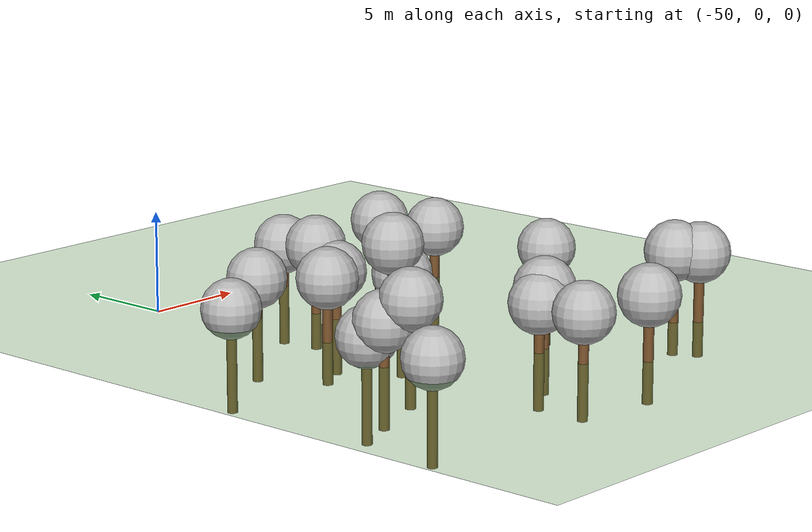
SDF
<sdf version="1.7">
 <world name="default">
  <model name="tree_simple434">
   <static>1</static>
   <link name="link">
    <pose>0 0 0.1 0 -0 0</pose>
    <collision name="collision_trunk">
     <pose>0 0 2 0 -0 0</pose>
     <geometry><cylinder><radius>0.25</radius><length>4</length></cylinder></geometry>
    </collision>
    <collision name="collision_treetop">
     <pose>0 0 5.2 0 -0 0</pose>
     <geometry><sphere><radius>1.5</radius></sphere></geometry>
    </collision>
    <visual name="trunk">
     <pose>0 0 2 0 -0 0</pose>
     <geometry><cylinder><radius>0.25</radius><length>4</length></cylinder></geometry>
     <material>
      <script>
       <uri>model://tree_simple/scripts</uri>
       <uri>model://tree_simple/materials/textures</uri>
       <name>TreeSimple/Trunk</name>
      </script>
     </material>
    </visual>
    <visual name="treetop">
     <pose>0 0 5.2 0 -0 0</pose>
     <geometry><sphere><radius>1.5</radius></sphere></geometry>
     <material>
      <script>
       <uri>model://tree_simple/scripts</uri>
       <uri>model://tree_simple/materials/textures</uri>
       <name>TreeSimple/Treetop</name>
      </script>
     </material>
    </visual>
   </link>
   <pose>-43.1297 -18.5304 -2.94582 0 -0 0</pose>
  </model>
  <model name="tree_simple403">
   <static>1</static>
   <link name="link">
    <pose>0 0 0.1 0 -0 0</pose>
    <collision name="collision_trunk">
     <pose>0 0 2 0 -0 0</pose>
     <geometry><cylinder><radius>0.25</radius><length>4</length></cylinder></geometry>
    </collision>
    <collision name="collision_treetop">
     <pose>0 0 5.2 0 -0 0</pose>
     <geometry><sphere><radius>1.5</radius></sphere></geometry>
    </collision>
    <visual name="trunk">
     <pose>0 0 2 0 -0 0</pose>
     <geometry><cylinder><radius>0.25</radius><length>4</length></cylinder></geometry>
     <material>
      <script>
       <uri>model://tree_simple/scripts</uri>
       <uri>model://tree_simple/materials/textures</uri>
       <name>TreeSimple/Trunk</name>
      </script>
     </material>
    </visual>
    <visual name="treetop">
     <pose>0 0 5.2 0 -0 0</pose>
     <geometry><sphere><radius>1.5</radius></sphere></geometry>
     <material>
      <script>
       <uri>model://tree_simple/scripts</uri>
       <uri>model://tree_simple/materials/textures</uri>
       <name>TreeSimple/Treetop</name>
      </script>
     </material>
    </visual>
   </link>
   <pose>-49.5317 -17.5557 -4.45522 0 -0 0</pose>
  </model>
  <model name="tree_simple396">
   <static>1</static>
   <link name="link">
    <pose>0 0 0.1 0 -0 0</pose>
    <collision name="collision_trunk">
     <pose>0 0 2 0 -0 0</pose>
     <geometry><cylinder><radius>0.25</radius><length>4</length></cylinder></geometry>
    </collision>
    <collision name="collision_treetop">
     <pose>0 0 5.2 0 -0 0</pose>
     <geometry><sphere><radius>1.5</radius></sphere></geometry>
    </collision>
    <visual name="trunk">
     <pose>0 0 2 0 -0 0</pose>
     <geometry><cylinder><radius>0.25</radius><length>4</length></cylinder></geometry>
     <material>
      <script>
       <uri>model://tree_simple/scripts</uri>
       <uri>model://tree_simple/materials/textures</uri>
       <name>TreeSimple/Trunk</name>
      </script>
     </material>
    </visual>
    <visual name="treetop">
     <pose>0 0 5.2 0 -0 0</pose>
     <geometry><sphere><radius>1.5</radius></sphere></geometry>
     <material>
      <script>
       <uri>model://tree_simple/scripts</uri>
       <uri>model://tree_simple/materials/textures</uri>
       <name>TreeSimple/Treetop</name>
      </script>
     </material>
    </visual>
   </link>
   <pose>-34.4955 -19.8378 -1.78107 0 -0 0</pose>
  </model>
  <model name="tree_simple375">
   <static>1</static>
   <link name="link">
    <pose>0 0 0.1 0 -0 0</pose>
    <collision name="collision_trunk">
     <pose>0 0 2 0 -0 0</pose>
     <geometry><cylinder><radius>0.25</radius><length>4</length></cylinder></geometry>
    </collision>
    <collision name="collision_treetop">
     <pose>0 0 5.2 0 -0 0</pose>
     <geometry><sphere><radius>1.5</radius></sphere></geometry>
    </collision>
    <visual name="trunk">
     <pose>0 0 2 0 -0 0</pose>
     <geometry><cylinder><radius>0.25</radius><length>4</length></cylinder></geometry>
     <material>
      <script>
       <uri>model://tree_simple/scripts</uri>
       <uri>model://tree_simple/materials/textures</uri>
       <name>TreeSimple/Trunk</name>
      </script>
     </material>
    </visual>
    <visual name="treetop">
     <pose>0 0 5.2 0 -0 0</pose>
     <geometry><sphere><radius>1.5</radius></sphere></geometry>
     <material>
      <script>
       <uri>model://tree_simple/scripts</uri>
       <uri>model://tree_simple/materials/textures</uri>
       <name>TreeSimple/Treetop</name>
      </script>
     </material>
    </visual>
   </link>
   <pose>-48.3845 -9.90797 -2.22465 0 -0 0</pose>
  </model>
  <model name="tree_simple373">
   <static>1</static>
   <link name="link">
    <pose>0 0 0.1 0 -0 0</pose>
    <collision name="collision_trunk">
     <pose>0 0 2 0 -0 0</pose>
     <geometry><cylinder><radius>0.25</radius><length>4</length></cylinder></geometry>
    </collision>
    <collision name="collision_treetop">
     <pose>0 0 5.2 0 -0 0</pose>
     <geometry><sphere><radius>1.5</radius></sphere></geometry>
    </collision>
    <visual name="trunk">
     <pose>0 0 2 0 -0 0</pose>
     <geometry><cylinder><radius>0.25</radius><length>4</length></cylinder></geometry>
     <material>
      <script>
       <uri>model://tree_simple/scripts</uri>
       <uri>model://tree_simple/materials/textures</uri>
       <name>TreeSimple/Trunk</name>
      </script>
     </material>
    </visual>
    <visual name="treetop">
     <pose>0 0 5.2 0 -0 0</pose>
     <geometry><sphere><radius>1.5</radius></sphere></geometry>
     <material>
      <script>
       <uri>model://tree_simple/scripts</uri>
       <uri>model://tree_simple/materials/textures</uri>
       <name>TreeSimple/Treetop</name>
      </script>
     </material>
    </visual>
   </link>
   <pose>-43.1843 -21.2191 -2.91857 0 -0 0</pose>
  </model>
  <model name="tree_simple369">
   <static>1</static>
   <link name="link">
    <pose>0 0 0.1 0 -0 0</pose>
    <collision name="collision_trunk">
     <pose>0 0 2 0 -0 0</pose>
     <geometry><cylinder><radius>0.25</radius><length>4</length></cylinder></geometry>
    </collision>
    <collision name="collision_treetop">
     <pose>0 0 5.2 0 -0 0</pose>
     <geometry><sphere><radius>1.5</radius></sphere></geometry>
    </collision>
    <visual name="trunk">
     <pose>0 0 2 0 -0 0</pose>
     <geometry><cylinder><radius>0.25</radius><length>4</length></cylinder></geometry>
     <material>
      <script>
       <uri>model://tree_simple/scripts</uri>
       <uri>model://tree_simple/materials/textures</uri>
       <name>TreeSimple/Trunk</name>
      </script>
     </material>
    </visual>
    <visual name="treetop">
     <pose>0 0 5.2 0 -0 0</pose>
     <geometry><sphere><radius>1.5</radius></sphere></geometry>
     <material>
      <script>
       <uri>model://tree_simple/scripts</uri>
       <uri>model://tree_simple/materials/textures</uri>
       <name>TreeSimple/Treetop</name>
      </script>
     </material>
    </visual>
   </link>
   <pose>-40.8904 -23.2176 -2.18295 0 -0 0</pose>
  </model>
  <model name="tree_simple341">
   <static>1</static>
   <link name="link">
    <pose>0 0 0.1 0 -0 0</pose>
    <collision name="collision_trunk">
     <pose>0 0 2 0 -0 0</pose>
     <geometry><cylinder><radius>0.25</radius><length>4</length></cylinder></geometry>
    </collision>
    <collision name="collision_treetop">
     <pose>0 0 5.2 0 -0 0</pose>
     <geometry><sphere><radius>1.5</radius></sphere></geometry>
    </collision>
    <visual name="trunk">
     <pose>0 0 2 0 -0 0</pose>
     <geometry><cylinder><radius>0.25</radius><length>4</length></cylinder></geometry>
     <material>
      <script>
       <uri>model://tree_simple/scripts</uri>
       <uri>model://tree_simple/materials/textures</uri>
       <name>TreeSimple/Trunk</name>
      </script>
     </material>
    </visual>
    <visual name="treetop">
     <pose>0 0 5.2 0 -0 0</pose>
     <geometry><sphere><radius>1.5</radius></sphere></geometry>
     <material>
      <script>
       <uri>model://tree_simple/scripts</uri>
       <uri>model://tree_simple/materials/textures</uri>
       <name>TreeSimple/Treetop</name>
      </script>
     </material>
    </visual>
   </link>
   <pose>-49.5074 -4.58498 -4.4339 0 -0 0</pose>
  </model>
  <model name="tree_simple326">
   <static>1</static>
   <link name="link">
    <pose>0 0 0.1 0 -0 0</pose>
    <collision name="collision_trunk">
     <pose>0 0 2 0 -0 0</pose>
     <geometry><cylinder><radius>0.25</radius><length>4</length></cylinder></geometry>
    </collision>
    <collision name="collision_treetop">
     <pose>0 0 5.2 0 -0 0</pose>
     <geometry><sphere><radius>1.5</radius></sphere></geometry>
    </collision>
    <visual name="trunk">
     <pose>0 0 2 0 -0 0</pose>
     <geometry><cylinder><radius>0.25</radius><length>4</length></cylinder></geometry>
     <material>
      <script>
       <uri>model://tree_simple/scripts</uri>
       <uri>model://tree_simple/materials/textures</uri>
       <name>TreeSimple/Trunk</name>
      </script>
     </material>
    </visual>
    <visual name="treetop">
     <pose>0 0 5.2 0 -0 0</pose>
     <geometry><sphere><radius>1.5</radius></sphere></geometry>
     <material>
      <script>
       <uri>model://tree_simple/scripts</uri>
       <uri>model://tree_simple/materials/textures</uri>
       <name>TreeSimple/Treetop</name>
      </script>
     </material>
    </visual>
   </link>
   <pose>-44.852 -5.8044 -1.94404 0 -0 0</pose>
  </model>
  <model name="tree_simple323">
   <static>1</static>
   <link name="link">
    <pose>0 0 0.1 0 -0 0</pose>
    <collision name="collision_trunk">
     <pose>0 0 2 0 -0 0</pose>
     <geometry><cylinder><radius>0.25</radius><length>4</length></cylinder></geometry>
    </collision>
    <collision name="collision_treetop">
     <pose>0 0 5.2 0 -0 0</pose>
     <geometry><sphere><radius>1.5</radius></sphere></geometry>
    </collision>
    <visual name="trunk">
     <pose>0 0 2 0 -0 0</pose>
     <geometry><cylinder><radius>0.25</radius><length>4</length></cylinder></geometry>
     <material>
      <script>
       <uri>model://tree_simple/scripts</uri>
       <uri>model://tree_simple/materials/textures</uri>
       <name>TreeSimple/Trunk</name>
      </script>
     </material>
    </visual>
    <visual name="treetop">
     <pose>0 0 5.2 0 -0 0</pose>
     <geometry><sphere><radius>1.5</radius></sphere></geometry>
     <material>
      <script>
       <uri>model://tree_simple/scripts</uri>
       <uri>model://tree_simple/materials/textures</uri>
       <name>TreeSimple/Treetop</name>
      </script>
     </material>
    </visual>
   </link>
   <pose>-44.9542 -10.9648 -0.99132 0 -0 0</pose>
  </model>
  <model name="tree_simple318">
   <static>1</static>
   <link name="link">
    <pose>0 0 0.1 0 -0 0</pose>
    <collision name="collision_trunk">
     <pose>0 0 2 0 -0 0</pose>
     <geometry><cylinder><radius>0.25</radius><length>4</length></cylinder></geometry>
    </collision>
    <collision name="collision_treetop">
     <pose>0 0 5.2 0 -0 0</pose>
     <geometry><sphere><radius>1.5</radius></sphere></geometry>
    </collision>
    <visual name="trunk">
     <pose>0 0 2 0 -0 0</pose>
     <geometry><cylinder><radius>0.25</radius><length>4</length></cylinder></geometry>
     <material>
      <script>
       <uri>model://tree_simple/scripts</uri>
       <uri>model://tree_simple/materials/textures</uri>
       <name>TreeSimple/Trunk</name>
      </script>
     </material>
    </visual>
    <visual name="treetop">
     <pose>0 0 5.2 0 -0 0</pose>
     <geometry><sphere><radius>1.5</radius></sphere></geometry>
     <material>
      <script>
       <uri>model://tree_simple/scripts</uri>
       <uri>model://tree_simple/materials/textures</uri>
       <name>TreeSimple/Treetop</name>
      </script>
     </material>
    </visual>
   </link>
   <pose>-35.5307 -5.31131 -2.69898 0 -0 0</pose>
  </model>
  <model name="tree_simple259">
   <static>1</static>
   <link name="link">
    <pose>0 0 0.1 0 -0 0</pose>
    <collision name="collision_trunk">
     <pose>0 0 2 0 -0 0</pose>
     <geometry><cylinder><radius>0.25</radius><length>4</length></cylinder></geometry>
    </collision>
    <collision name="collision_treetop">
     <pose>0 0 5.2 0 -0 0</pose>
     <geometry><sphere><radius>1.5</radius></sphere></geometry>
    </collision>
    <visual name="trunk">
     <pose>0 0 2 0 -0 0</pose>
     <geometry><cylinder><radius>0.25</radius><length>4</length></cylinder></geometry>
     <material>
      <script>
       <uri>model://tree_simple/scripts</uri>
       <uri>model://tree_simple/materials/textures</uri>
       <name>TreeSimple/Trunk</name>
      </script>
     </material>
    </visual>
    <visual name="treetop">
     <pose>0 0 5.2 0 -0 0</pose>
     <geometry><sphere><radius>1.5</radius></sphere></geometry>
     <material>
      <script>
       <uri>model://tree_simple/scripts</uri>
       <uri>model://tree_simple/materials/textures</uri>
       <name>TreeSimple/Treetop</name>
      </script>
     </material>
    </visual>
   </link>
   <pose>-49.2282 -15.9494 -2.03117 0 -0 0</pose>
  </model>
  <model name="tree_simple240">
   <static>1</static>
   <link name="link">
    <pose>0 0 0.1 0 -0 0</pose>
    <collision name="collision_trunk">
     <pose>0 0 2 0 -0 0</pose>
     <geometry><cylinder><radius>0.25</radius><length>4</length></cylinder></geometry>
    </collision>
    <collision name="collision_treetop">
     <pose>0 0 5.2 0 -0 0</pose>
     <geometry><sphere><radius>1.5</radius></sphere></geometry>
    </collision>
    <visual name="trunk">
     <pose>0 0 2 0 -0 0</pose>
     <geometry><cylinder><radius>0.25</radius><length>4</length></cylinder></geometry>
     <material>
      <script>
       <uri>model://tree_simple/scripts</uri>
       <uri>model://tree_simple/materials/textures</uri>
       <name>TreeSimple/Trunk</name>
      </script>
     </material>
    </visual>
    <visual name="treetop">
     <pose>0 0 5.2 0 -0 0</pose>
     <geometry><sphere><radius>1.5</radius></sphere></geometry>
     <material>
      <script>
       <uri>model://tree_simple/scripts</uri>
       <uri>model://tree_simple/materials/textures</uri>
       <name>TreeSimple/Treetop</name>
      </script>
     </material>
    </visual>
   </link>
   <pose>-49.7674 -14.7908 -3.16157 0 -0 0</pose>
  </model>
  <model name="tree_simple239">
   <static>1</static>
   <link name="link">
    <pose>0 0 0.1 0 -0 0</pose>
    <collision name="collision_trunk">
     <pose>0 0 2 0 -0 0</pose>
     <geometry><cylinder><radius>0.25</radius><length>4</length></cylinder></geometry>
    </collision>
    <collision name="collision_treetop">
     <pose>0 0 5.2 0 -0 0</pose>
     <geometry><sphere><radius>1.5</radius></sphere></geometry>
    </collision>
    <visual name="trunk">
     <pose>0 0 2 0 -0 0</pose>
     <geometry><cylinder><radius>0.25</radius><length>4</length></cylinder></geometry>
     <material>
      <script>
       <uri>model://tree_simple/scripts</uri>
       <uri>model://tree_simple/materials/textures</uri>
       <name>TreeSimple/Trunk</name>
      </script>
     </material>
    </visual>
    <visual name="treetop">
     <pose>0 0 5.2 0 -0 0</pose>
     <geometry><sphere><radius>1.5</radius></sphere></geometry>
     <material>
      <script>
       <uri>model://tree_simple/scripts</uri>
       <uri>model://tree_simple/materials/textures</uri>
       <name>TreeSimple/Treetop</name>
      </script>
     </material>
    </visual>
   </link>
   <pose>-44.9804 -7.28495 -2.93881 0 -0 0</pose>
  </model>
  <model name="tree_simple221">
   <static>1</static>
   <link name="link">
    <pose>0 0 0.1 0 -0 0</pose>
    <collision name="collision_trunk">
     <pose>0 0 2 0 -0 0</pose>
     <geometry><cylinder><radius>0.25</radius><length>4</length></cylinder></geometry>
    </collision>
    <collision name="collision_treetop">
     <pose>0 0 5.2 0 -0 0</pose>
     <geometry><sphere><radius>1.5</radius></sphere></geometry>
    </collision>
    <visual name="trunk">
     <pose>0 0 2 0 -0 0</pose>
     <geometry><cylinder><radius>0.25</radius><length>4</length></cylinder></geometry>
     <material>
      <script>
       <uri>model://tree_simple/scripts</uri>
       <uri>model://tree_simple/materials/textures</uri>
       <name>TreeSimple/Trunk</name>
      </script>
     </material>
    </visual>
    <visual name="treetop">
     <pose>0 0 5.2 0 -0 0</pose>
     <geometry><sphere><radius>1.5</radius></sphere></geometry>
     <material>
      <script>
       <uri>model://tree_simple/scripts</uri>
       <uri>model://tree_simple/materials/textures</uri>
       <name>TreeSimple/Treetop</name>
      </script>
     </material>
    </visual>
   </link>
   <pose>-33.63 -20.7003 -1.88209 0 -0 0</pose>
  </model>
  <model name="tree_simple220">
   <static>1</static>
   <link name="link">
    <pose>0 0 0.1 0 -0 0</pose>
    <collision name="collision_trunk">
     <pose>0 0 2 0 -0 0</pose>
     <geometry><cylinder><radius>0.25</radius><length>4</length></cylinder></geometry>
    </collision>
    <collision name="collision_treetop">
     <pose>0 0 5.2 0 -0 0</pose>
     <geometry><sphere><radius>1.5</radius></sphere></geometry>
    </collision>
    <visual name="trunk">
     <pose>0 0 2 0 -0 0</pose>
     <geometry><cylinder><radius>0.25</radius><length>4</length></cylinder></geometry>
     <material>
      <script>
       <uri>model://tree_simple/scripts</uri>
       <uri>model://tree_simple/materials/textures</uri>
       <name>TreeSimple/Trunk</name>
      </script>
     </material>
    </visual>
    <visual name="treetop">
     <pose>0 0 5.2 0 -0 0</pose>
     <geometry><sphere><radius>1.5</radius></sphere></geometry>
     <material>
      <script>
       <uri>model://tree_simple/scripts</uri>
       <uri>model://tree_simple/materials/textures</uri>
       <name>TreeSimple/Treetop</name>
      </script>
     </material>
    </visual>
   </link>
   <pose>-36.5536 -2.4328 -2.61272 0 -0 0</pose>
  </model>
  <model name="tree_simple171">
   <static>1</static>
   <link name="link">
    <pose>0 0 0.1 0 -0 0</pose>
    <collision name="collision_trunk">
     <pose>0 0 2 0 -0 0</pose>
     <geometry><cylinder><radius>0.25</radius><length>4</length></cylinder></geometry>
    </collision>
    <collision name="collision_treetop">
     <pose>0 0 5.2 0 -0 0</pose>
     <geometry><sphere><radius>1.5</radius></sphere></geometry>
    </collision>
    <visual name="trunk">
     <pose>0 0 2 0 -0 0</pose>
     <geometry><cylinder><radius>0.25</radius><length>4</length></cylinder></geometry>
     <material>
      <script>
       <uri>model://tree_simple/scripts</uri>
       <uri>model://tree_simple/materials/textures</uri>
       <name>TreeSimple/Trunk</name>
      </script>
     </material>
    </visual>
    <visual name="treetop">
     <pose>0 0 5.2 0 -0 0</pose>
     <geometry><sphere><radius>1.5</radius></sphere></geometry>
     <material>
      <script>
       <uri>model://tree_simple/scripts</uri>
       <uri>model://tree_simple/materials/textures</uri>
       <name>TreeSimple/Treetop</name>
      </script>
     </material>
    </visual>
   </link>
   <pose>-47.4177 -4.27302 -3.34892 0 -0 0</pose>
  </model>
  <model name="tree_simple146">
   <static>1</static>
   <link name="link">
    <pose>0 0 0.1 0 -0 0</pose>
    <collision name="collision_trunk">
     <pose>0 0 2 0 -0 0</pose>
     <geometry><cylinder><radius>0.25</radius><length>4</length></cylinder></geometry>
    </collision>
    <collision name="collision_treetop">
     <pose>0 0 5.2 0 -0 0</pose>
     <geometry><sphere><radius>1.5</radius></sphere></geometry>
    </collision>
    <visual name="trunk">
     <pose>0 0 2 0 -0 0</pose>
     <geometry><cylinder><radius>0.25</radius><length>4</length></cylinder></geometry>
     <material>
      <script>
       <uri>model://tree_simple/scripts</uri>
       <uri>model://tree_simple/materials/textures</uri>
       <name>TreeSimple/Trunk</name>
      </script>
     </material>
    </visual>
    <visual name="treetop">
     <pose>0 0 5.2 0 -0 0</pose>
     <geometry><sphere><radius>1.5</radius></sphere></geometry>
     <material>
      <script>
       <uri>model://tree_simple/scripts</uri>
       <uri>model://tree_simple/materials/textures</uri>
       <name>TreeSimple/Treetop</name>
      </script>
     </material>
    </visual>
   </link>
   <pose>-42.8686 -9.6821 -3.07126 0 -0 0</pose>
  </model>
  <model name="tree_simple100">
   <static>1</static>
   <link name="link">
    <pose>0 0 0.1 0 -0 0</pose>
    <collision name="collision_trunk">
     <pose>0 0 2 0 -0 0</pose>
     <geometry><cylinder><radius>0.25</radius><length>4</length></cylinder></geometry>
    </collision>
    <collision name="collision_treetop">
     <pose>0 0 5.2 0 -0 0</pose>
     <geometry><sphere><radius>1.5</radius></sphere></geometry>
    </collision>
    <visual name="trunk">
     <pose>0 0 2 0 -0 0</pose>
     <geometry><cylinder><radius>0.25</radius><length>4</length></cylinder></geometry>
     <material>
      <script>
       <uri>model://tree_simple/scripts</uri>
       <uri>model://tree_simple/materials/textures</uri>
       <name>TreeSimple/Trunk</name>
      </script>
     </material>
    </visual>
    <visual name="treetop">
     <pose>0 0 5.2 0 -0 0</pose>
     <geometry><sphere><radius>1.5</radius></sphere></geometry>
     <material>
      <script>
       <uri>model://tree_simple/scripts</uri>
       <uri>model://tree_simple/materials/textures</uri>
       <name>TreeSimple/Treetop</name>
      </script>
     </material>
    </visual>
   </link>
   <pose>-42.0524 -0.870595 -3.14602 0 -0 0</pose>
  </model>
  <model name="tree_simple91">
   <static>1</static>
   <link name="link">
    <pose>0 0 0.1 0 -0 0</pose>
    <collision name="collision_trunk">
     <pose>0 0 2 0 -0 0</pose>
     <geometry><cylinder><radius>0.25</radius><length>4</length></cylinder></geometry>
    </collision>
    <collision name="collision_treetop">
     <pose>0 0 5.2 0 -0 0</pose>
     <geometry><sphere><radius>1.5</radius></sphere></geometry>
    </collision>
    <visual name="trunk">
     <pose>0 0 2 0 -0 0</pose>
     <geometry><cylinder><radius>0.25</radius><length>4</length></cylinder></geometry>
     <material>
      <script>
       <uri>model://tree_simple/scripts</uri>
       <uri>model://tree_simple/materials/textures</uri>
       <name>TreeSimple/Trunk</name>
      </script>
     </material>
    </visual>
    <visual name="treetop">
     <pose>0 0 5.2 0 -0 0</pose>
     <geometry><sphere><radius>1.5</radius></sphere></geometry>
     <material>
      <script>
       <uri>model://tree_simple/scripts</uri>
       <uri>model://tree_simple/materials/textures</uri>
       <name>TreeSimple/Treetop</name>
      </script>
     </material>
    </visual>
   </link>
   <pose>-49.8341 -13.7707 -4.07475 0 -0 0</pose>
  </model>
  <model name="tree_simple75">
   <static>1</static>
   <link name="link">
    <pose>0 0 0.1 0 -0 0</pose>
    <collision name="collision_trunk">
     <pose>0 0 2 0 -0 0</pose>
     <geometry><cylinder><radius>0.25</radius><length>4</length></cylinder></geometry>
    </collision>
    <collision name="collision_treetop">
     <pose>0 0 5.2 0 -0 0</pose>
     <geometry><sphere><radius>1.5</radius></sphere></geometry>
    </collision>
    <visual name="trunk">
     <pose>0 0 2 0 -0 0</pose>
     <geometry><cylinder><radius>0.25</radius><length>4</length></cylinder></geometry>
     <material>
      <script>
       <uri>model://tree_simple/scripts</uri>
       <uri>model://tree_simple/materials/textures</uri>
       <name>TreeSimple/Trunk</name>
      </script>
     </material>
    </visual>
    <visual name="treetop">
     <pose>0 0 5.2 0 -0 0</pose>
     <geometry><sphere><radius>1.5</radius></sphere></geometry>
     <material>
      <script>
       <uri>model://tree_simple/scripts</uri>
       <uri>model://tree_simple/materials/textures</uri>
       <name>TreeSimple/Treetop</name>
      </script>
     </material>
    </visual>
   </link>
   <pose>-42.3546 -18.1932 -2.40181 0 -0 0</pose>
  </model>
  <model name="tree_simple62">
   <static>1</static>
   <link name="link">
    <pose>0 0 0.1 0 -0 0</pose>
    <collision name="collision_trunk">
     <pose>0 0 2 0 -0 0</pose>
     <geometry><cylinder><radius>0.25</radius><length>4</length></cylinder></geometry>
    </collision>
    <collision name="collision_treetop">
     <pose>0 0 5.2 0 -0 0</pose>
     <geometry><sphere><radius>1.5</radius></sphere></geometry>
    </collision>
    <visual name="trunk">
     <pose>0 0 2 0 -0 0</pose>
     <geometry><cylinder><radius>0.25</radius><length>4</length></cylinder></geometry>
     <material>
      <script>
       <uri>model://tree_simple/scripts</uri>
       <uri>model://tree_simple/materials/textures</uri>
       <name>TreeSimple/Trunk</name>
      </script>
     </material>
    </visual>
    <visual name="treetop">
     <pose>0 0 5.2 0 -0 0</pose>
     <geometry><sphere><radius>1.5</radius></sphere></geometry>
     <material>
      <script>
       <uri>model://tree_simple/scripts</uri>
       <uri>model://tree_simple/materials/textures</uri>
       <name>TreeSimple/Treetop</name>
      </script>
     </material>
    </visual>
   </link>
   <pose>-31.7033 -9.58889 -3.77577 0 -0 0</pose>
  </model>
  <model name="ground_plane">
   <static>1</static>
   <link name="link">
    <collision name="collision">
     <geometry><plane><normal>0 0 1</normal><size>250 250</size></plane></geometry>
     <surface><friction><ode><mu>1</mu><mu2>1</mu2></ode></friction></surface>
    </collision>
    <visual name="grass">
     <cast_shadows>0</cast_shadows>
     <geometry><plane><normal>0 0 1</normal><size>150 250</size></plane></geometry>
     <material>
      <script><uri>file://media/materials/scripts/Gazebo.material</uri><name>Gazebo/Grass</name></script>
     </material>
    </visual>
   </link>
  </model>
 </world>
</sdf>
